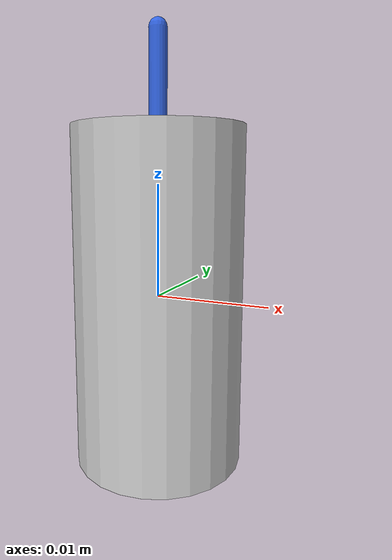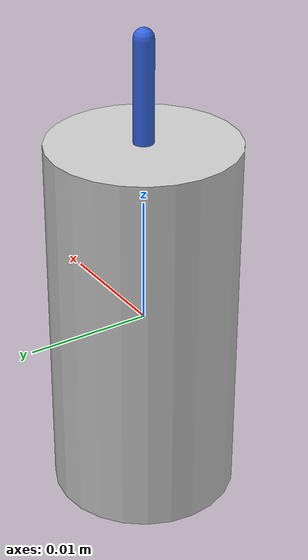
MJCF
<mujoco model="ENDOCRAB_Swinging_Needle_Module">
  <compiler angle="degree" coordinate="local"/>
  <worldbody>
    <body name="base_housing" pos="0 0 0">
      <geom type="cylinder" size="0.0075 0.015" rgba="0.8 0.8 0.8 1"/>
      <body name="needle_arm" pos="0 0 0.015">
        <joint name="needle_pivot_joint" type="hinge" axis="0 1 0" range="0 130"/>
        <geom type="capsule" size="0.0008 0.008" rgba="0.2 0.4 0.9 1"/>
      </body>
    </body>
  </worldbody>
</mujoco>
